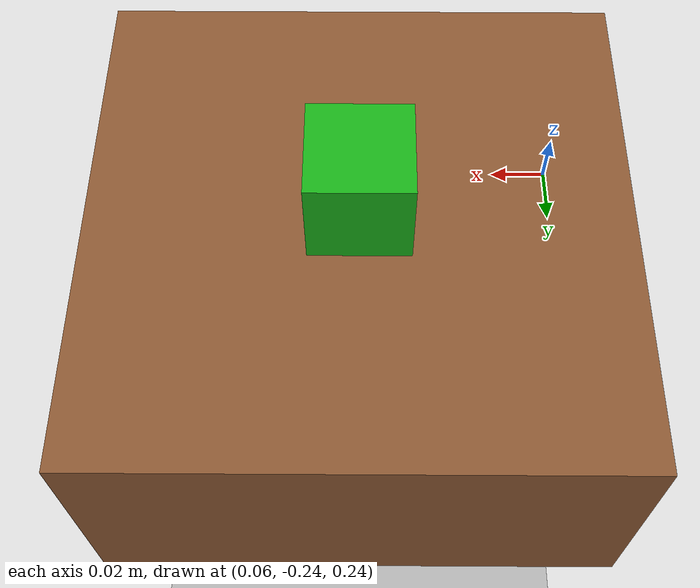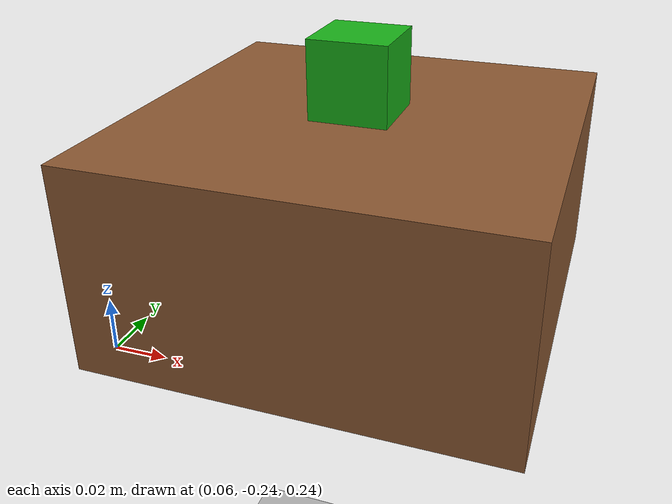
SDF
<?xml version="1.0" ?>
<sdf version="1.10">
  <world name="grasp_world">

    <physics name="1ms" type="dart">
      <max_step_size>0.002</max_step_size>
      <real_time_factor>1.0</real_time_factor>
    </physics>

    <plugin filename="gz-sim-physics-system" name="gz::sim::systems::Physics"/>
    <plugin filename="gz-sim-user-commands-system"  name="gz::sim::systems::UserCommands"/>
    <plugin filename="gz-sim-scene-broadcaster-system" name="gz::sim::systems::SceneBroadcaster"/>
    <plugin filename="gz-sim-sensors-system"        name="gz::sim::systems::Sensors">
      <render_engine>ogre2</render_engine>
    </plugin>

    <light name="sun" type="directional">
      <pose>0 0 10 0 0 0</pose>
      <diffuse>1 1 1 1</diffuse>
      <specular>0.5 0.5 0.5 1</specular>
      <direction>0.5 0.5 -1</direction>
      <cast_shadows>true</cast_shadows>
    </light>

    <model name="ground_plane">
      <static>true</static>
      <link name="link">
        <collision name="collision">
          <geometry><plane><normal>0 0 1</normal><size>10 10</size></plane></geometry>
        </collision>
        <visual name="visual">
          <geometry><plane><normal>0 0 1</normal><size>10 10</size></plane></geometry>
          <material>
            <ambient>0.6 0.6 0.6 1</ambient>
            <diffuse>0.7 0.7 0.7 1</diffuse>
          </material>
        </visual>
      </link>
    </model>

    <!-- low platform supporting the cube. Cube center (0.13,-0.17,0.33),
         platform z = 0.33 - 0.015(cube half) - 0.04(platform half) = 0.275 -->
    <model name="platform">
      <static>true</static>
      <pose>0.13 -0.17 0.275 0 0 0</pose>
      <link name="link">
        <collision name="collision">
          <geometry><box><size>0.16 0.16 0.08</size></box></geometry>
        </collision>
        <visual name="visual">
          <geometry><box><size>0.16 0.16 0.08</size></box></geometry>
          <material>
            <ambient>0.55 0.35 0.20 1</ambient>
            <diffuse>0.55 0.35 0.20 1</diffuse>
          </material>
        </visual>
      </link>
    </model>

    <!-- target cube -->
    <model name="cube">
      <pose>0.13 -0.17 0.33 0 0 0</pose>
      <link name="link">
        <inertial>
          <mass>0.05</mass>
          <inertia><ixx>1e-5</ixx><iyy>1e-5</iyy><izz>1e-5</izz>
                   <ixy>0</ixy><ixz>0</ixz><iyz>0</iyz></inertia>
        </inertial>
        <collision name="collision">
          <geometry><box><size>0.03 0.03 0.03</size></box></geometry>
        </collision>
        <visual name="visual">
          <geometry><box><size>0.03 0.03 0.03</size></box></geometry>
          <material>
            <ambient>0.10 0.70 0.10 1</ambient>
            <diffuse>0.10 0.70 0.10 1</diffuse>
          </material>
        </visual>
      </link>
    </model>

  </world>
</sdf>
